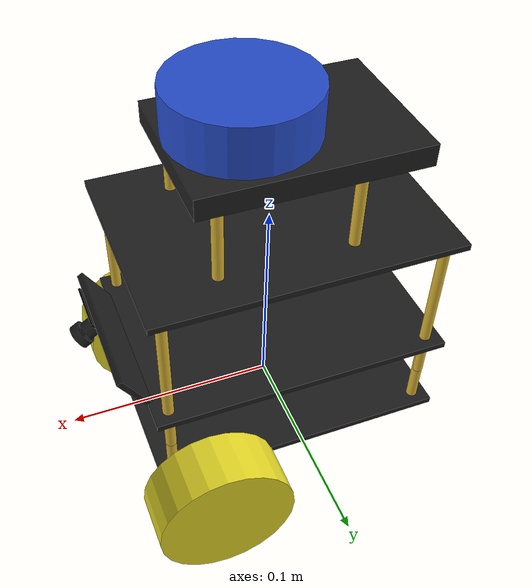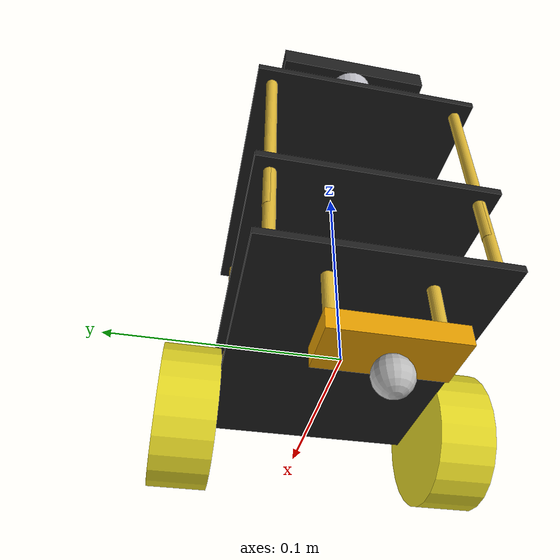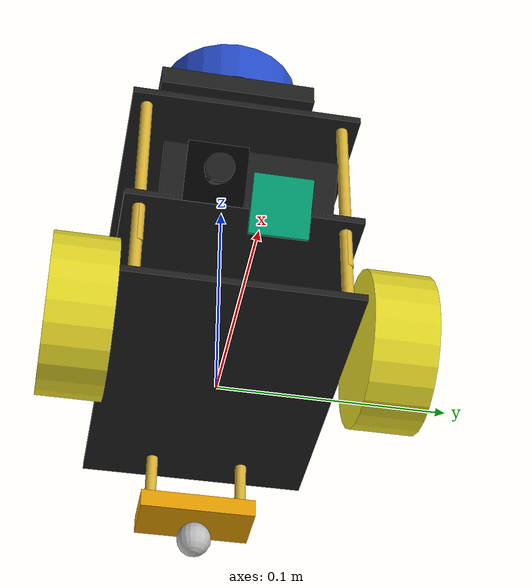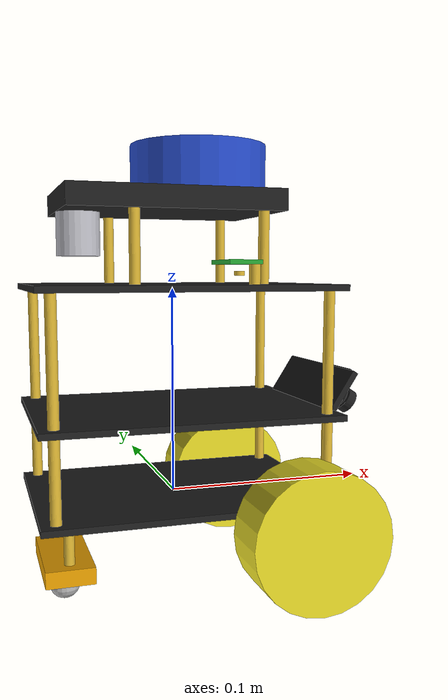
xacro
<?xml version="1.0"?>
<robot xmlns:xacro="http://www.ros.org/wiki/xacro" name="jetbot">

    <xacro:include filename="$(find jetbot_sim)/xacro/standoff.xacro"/>
    <xacro:include filename="$(find jetbot_sim)/xacro/wheel.xacro"/>
    <xacro:include filename="$(find jetbot_sim)/xacro/base-plate.xacro"/>
    <xacro:include filename="$(find jetbot_sim)/xacro/ydlidar.xacro"/>
    <xacro:include filename="$(find jetb3ot_sim)/xacro/camera.xacro"/>
    <xacro:include filename="$(find jetbot_sim)/xacro/imu.xacro"/>
    <xacro:include filename="$(find jetbot_sim)/xacro/reflectance-sensor.xacro"/>

    <!-- odom, so base_link can have inertia -->
    <link name="odom"/>

    <!-- robot base -->
    <xacro:base-plate
        name = "base"
        parent = "odom"
        joint_origin_xyz = "0 0 0"
    />

    <xacro:standoff
        name ="standoff1"
        radius = "0.0025"
        length = "0.0393"
        mass = "0.008"
        parent = "base_link"
        joint_origin_xyz = "-0.06277 0.042975 0.01975"
    />

    <xacro:standoff
        name ="standoff2"
        radius = "0.0025"
        length = "0.0393"
        mass = "0.008"
        parent = "base_link"
        joint_origin_xyz = "0.06277 0.042975 0.01975"
    />

    <xacro:standoff
        name ="standoff3"
        radius = "0.0025"
        length = "0.0393"
        mass = "0.008"
        parent = "base_link"
        joint_origin_xyz = "0.06277 -0.042975 0.01975"
    />

    <xacro:standoff
        name ="standoff4"
        radius = "0.0025"
        length = "0.0393"
        mass = "0.008"
        parent = "base_link"
        joint_origin_xyz = "-0.06277 -0.042975 0.01975"
    />

    <!-- level 2 -->
    <xacro:base-plate
        name = "level2"
        parent = "standoff2"
        joint_origin_xyz = "-0.06277 -0.04275 0.02125"
    />

    <xacro:standoff
        name ="standoff5"
        radius = "0.0025"
        length = "0.081"
        mass = "0.016"
        parent = "level2_link"
        joint_origin_xyz = "-0.06277 0.042975 0.01975"
    />

    <xacro:standoff
        name ="standoff6"
        radius = "0.0025"
        length = "0.081"
        mass = "0.016"
        parent = "level2_link"
        joint_origin_xyz = "0.06277 0.042975 0.01975"
    />

    <xacro:standoff
        name ="standoff7"
        radius = "0.0025"
        length = "0.081"
        mass = "0.016"
        parent = "level2_link"
        joint_origin_xyz = "0.06277 -0.042975 0.01975"
    />

    <xacro:standoff
        name ="standoff8"
        radius = "0.0025"
        length = "0.081"
        mass = "0.016"
        parent = "level2_link"
        joint_origin_xyz = "-0.06277 -0.042975 0.01975"
    />

    <!-- level 3 -->
    <xacro:base-plate
        name = "level3"
        parent = "standoff6"
        joint_origin_xyz = "-0.06277 -0.04275 0.04"
    />

    <xacro:wheel
        name = "left_wheel"
        parent = "base_link"
        joint_origin_xyz = "0.047135 0.0625 -0.008125"
    />

    <xacro:wheel
        name = "right_wheel"
        parent = "base_link"
        joint_origin_xyz = "0.047135 -0.0625 -0.008125"
    />

    <xacro:standoff
        name = "standoff9"
        radius = "0.0025"
        length = "0.023"
        mass = "0.004"
        parent = "base_link"
        joint_origin_xyz = "-0.05477 0.02 -0.01375"
    />

    <xacro:standoff
        name = "standoff10"
        radius = "0.0025"
        length = "0.023"
        mass = "0.004"
        parent = "base_link"
        joint_origin_xyz = "-0.05477 -0.02 -0.01375"
    />

    <link name="caster_plate_link">
        <visual>
          <geometry>
            <box size="0.023 0.05 0.008"/>
          </geometry>
        </visual>
        <collision>
          <geometry>
            <box size="0.023 0.01 0.008"/>
          </geometry>
        </collision>
        <inertial>
          <mass value="0.003"/>
          <origin rpy="0 0 0" xyz="0 0 0"/>
          <inertia ixx="0.0008333333333333335" ixy="0" ixz="0" iyy="0.0008333333333333335" iyz="0" izz="0.0008333333333333335"/>
        </inertial>
    </link>

    <joint name="caster_plate_joint" type="fixed">
        <origin rpy="0 0 0" xyz="0 0.02 -0.0165" />
        <parent link="standoff10" />
        <child link="caster_plate_link" />
    </joint>

    <link name="caster_ball_link">
        <visual>
          <origin xyz="0 0 0" rpy="0 0 0"/>
          <geometry>
            <sphere radius="0.0075"/>
          </geometry>
          <material name="silver">
            <color rgba="0.75 0.75 0.75 1.0"/>
          </material>
        </visual>
        <collision>
          <origin xyz="0 0 0" rpy="0 0 0"/>
          <geometry>
            <sphere radius="0.0075"/>
          </geometry>
        </collision>
        <inertial>
          <mass value="0.015"/>
          <origin xyz="0 0 0" rpy="0 0 0"/>
          <inertia ixx="0.00001" ixy="0.0" ixz="0.0" iyy="0.00001" iyz="0.0" izz="0.00001"/>
        </inertial>
    </link>

    <joint name="caster_ball_roll_joint" type="continuous">
        <parent link="caster_plate_link"/>
        <child link="caster_ball_link"/>
        <origin rpy="0 0 0" xyz="0 0 -0.0115"/>
        <axis xyz="1 0 0" />
    </joint>

    <link name="caster_ball_pitch_link" />

    <joint name="caster_ball_pitch_joint" type="continuous">
        <parent link="caster_ball_link"/>
        <child link="caster_ball_pitch_link"/>
        <origin xyz="0 0 0" rpy="0 0 0"/>
        <axis xyz="0 1 0"/>
    </joint>

    <link name="caster_ball_yaw_link" />

    <joint name="caster_ball_yaw_joint" type="continuous">
        <parent link="caster_ball_pitch_link"/>
        <child link="caster_ball_yaw_link"/>
        <origin xyz="0 0 0" rpy="0 0 0"/>
        <axis xyz="0 0 1"/>
    </joint>

    <xacro:standoff
        name = "standoff11"
        radius = "0.0025"
        length = "0.033"
        mass = "0.006"
        parent = "level3_link"
        joint_origin_xyz = "-0.025 -0.0315 0.018"
    />

    <xacro:standoff
        name = "standoff12"
        radius = "0.0025"
        length = "0.033"
        mass = "0.006"
        parent = "level3_link"
        joint_origin_xyz = "-0.025 0.0315 0.018"
    />

    <xacro:standoff
        name = "standoff13"
        radius = "0.0025"
        length = "0.033"
        mass = "0.006"
        parent = "level3_link"
        joint_origin_xyz = "0.035 -0.0315 0.018"
    />

    <xacro:standoff
        name = "standoff14"
        radius = "0.0025"
        length = "0.033"
        mass = "0.006"
        parent = "level3_link"
        joint_origin_xyz = "0.035 0.0315 0.018"
    />

    <xacro:ydlidar
        name = "primary"
        parent = "standoff14"
        joint_origin_xyz = "-0.04 -0.032 0.0215"
    />

    <link name="camera_plate_link">
        <visual>
          <geometry>
            <box size="0.022 0.072 0.003"/>
          </geometry>
        </visual>
        <collision>
          <geometry>
            <box size="0.022 0.072 0.003"/>
          </geometry>
        </collision>
        <inertial>
          <mass value="0.008"/>
          <origin rpy="0 0 0" xyz="0 0 0"/>
          <inertia ixx="0.0008333333333333335" ixy="0" ixz="0" iyy="0.0008333333333333335" iyz="0" izz="0.0008333333333333335"/>
        </inertial>
    </link>

    <joint name="camera_plate_joint" type="fixed">
        <origin rpy="0 -1 0" xyz="0.075 0 0.01" />
        <parent link="level2_link" />
        <child link="camera_plate_link" />
      </joint>

      <gazebo reference="camera_plate_link">
        <material>Gazebo/Black</material>
      </gazebo>

    <xacro:camera
        name = "front_camera"
        parent = "camera_plate_link"
        joint_origin_xyz = "0 -0.014 -0.002"
        joint_origin_rpy = "0 0 0"
    />

    <xacro:standoff
            name ="standoff15"
            radius = "0.0025"
            length = "0.01"
            mass = "0.002"
            parent = "level3_link"
            joint_origin_xyz = "0.0275 -0.04 0.0065"
        />

        <xacro:standoff
            name ="standoff16"
            radius = "0.0025"
            length = "0.002"
            mass = "0.5"
            parent = "level3_link"
            joint_origin_xyz = "0.0275 -0.02 0.0065"
        />

    <xacro:imu
        name = "default"
        parent = "standoff15"
        joint_origin_xyz = "-0.005 0.01 0.005"
        joint_origin_rpy = "0 0 1.5708"
    />

    <xacro:reflectance-sensor
        name = "front"
        parent = "camera_plate_link"
        joint_origin_xyz = "-0.01 0.014 -0.002"
    />

<!-- PLUGINS -->
<!-- JOINT PUBLISHER -->
<gazebo>
  <plugin name="jetbot_joint_state" filename="libgazebo_ros_joint_state_publisher.so">
    <update_rate>30</update_rate>
    <joint_name>left_wheel_joint</joint_name>
    <joint_name>right_wheel_joint</joint_name>
    <joint_name>caster_ball_yaw_joint</joint_name>
    <joint_name>caster_ball_roll_joint</joint_name>
    <joint_name>caster_ball_pitch_joint</joint_name>
  </plugin>
</gazebo>

<!-- Differential drive -->
<gazebo>
  <plugin filename="libgazebo_ros_diff_drive.so" name="differential_drive_controller">
    <!-- wheels -->
    <left_joint>left_wheel_joint</left_joint>
    <right_joint>right_wheel_joint</right_joint>
    <!-- kinematics -->
    <wheel_separation>0.13</wheel_separation>
    <wheel_diameter>0.065</wheel_diameter>
    <!-- limits -->
    <max_wheel_torque>1.0</max_wheel_torque>
    <max_wheel_acceleration>2.0</max_wheel_acceleration>
    <!-- output -->
    <publish_odom>true</publish_odom>
    <publish_odom_tf>true</publish_odom_tf>
    <odometry_frame>odom</odometry_frame>
    <robot_base_frame>base_link</robot_base_frame>
    <!-- cmd_vel topic -->
    <command_topic>/cmd_vel</command_topic>
  </plugin>
</gazebo>

<!-- Position Config -->
<ros2_control name="GazeboSystem" type="system">
  <hardware>
    <plugin>gazebo_ros2_control/GazeboSystem</plugin>
  </hardware>
  <joint name="default_ydlidar_top_joint">
    <command_interface name="position">
      <param name="min">-0.05</param>
      <param name="max">0.0</param>
    </command_interface>
    <state_interface name="position"/>
    <state_interface name="velocity"/>
    <state_interface name="effort"/>
  </joint>
</ros2_control>

<gazebo>
  <plugin filename="libgazebo_ros2_control.so" name="gazebo_ros2_control">
    <parameters>$(find jetbot_sim)/config/controller_position_velocity.yaml</parameters>
    <robot_param_node>robot_state_publisher</robot_param_node>
  </plugin>
</gazebo>
</robot>

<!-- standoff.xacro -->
<robot xmlns:xacro="http://www.ros.org/wiki/xacro" name="standoff">
    <xacro:macro name="standoff" params="name radius length mass parent joint_origin_xyz">
       <link name="${name}">
        <visual>
          <origin rpy="0 0 0" xyz="0 0 0" />
          <geometry>
            <cylinder radius="${radius}" length="${length}" />
          </geometry>
        </visual>
        <collision>
          <origin rpy="0 0 0" xyz="0 0 0"/>
          <geometry>
            <cylinder radius="${radius}" length="${length}" />
          </geometry>
        </collision>
        <inertial>
          <mass value="${mass}"/>
          <origin rpy="0 0 0" xyz="0 0 0"/>
          <inertia ixx="2e-05" ixy="0.0" ixz="0.0" iyy="2e-05" iyz="0.0" izz="2e-05"/>
        </inertial>
      </link>

      <joint name="${name}_standoff" type="fixed">
        <origin rpy="0 0 0" xyz="${joint_origin_xyz}" />
        <parent link="${parent}" />
        <child link="${name}" />
      </joint>

      <gazebo reference="${name}">
        <material>Gazebo/Gold</material>
      </gazebo>
    </xacro:macro>
</robot>

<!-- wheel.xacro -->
<robot xmlns:xacro="http://www.ros.org/wiki/xacro" name="wheel">
    <xacro:macro name="wheel" params="name parent joint_origin_xyz">
        <link name="${name}_link">
            <inertial>
                <origin rpy="0 1.5707 1.5707" xyz="0 0 0"/>
                <mass value="0.065"/>
                <inertia ixx="0.001" ixy="0.0" ixz="0.0" iyy="0.001" iyz="0.0" izz="0.001"/>
            </inertial>
            <visual>
                <origin rpy="0 1.5707 1.5707" xyz="0 0 0"/>
                <geometry>
                    <cylinder length="0.026" radius="0.0325"/>
                </geometry>
            </visual>
            <collision>
                <origin rpy="0 1.5707 1.5707" xyz="0 0 0"/>
                <geometry>
                    <cylinder length="0.026" radius="0.0325"/>
                </geometry>
            </collision>
        </link>

        <gazebo reference="${name}_link">
            <kp>1000000000000000000000000000.0</kp>
            <kd>1000000000000000000000000000.0</kd>
            <mu1>10.0</mu1>
            <mu2>10.0</mu2>
            <material>Gazebo/Yellow</material>
        </gazebo>

        <joint name="${name}_joint" type="continuous">
            <origin rpy="0 0 0" xyz="${joint_origin_xyz}"/>
            <parent link="${parent}"/>
            <child link="${name}_link"/>
            <axis rpy="0 0 0" xyz="0 1 0"/>
            <limit effort="10000" velocity="1000"/>
            <joint_properties damping="1.0" friction="1.0"/>
        </joint>
    </xacro:macro>
</robot>

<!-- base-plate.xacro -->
<robot xmlns:xacro="http://www.ros.org/wiki/xacro" name="base-plate">
    <xacro:macro name="base-plate" params="name parent joint_origin_xyz">
        <link name="${name}_link">
        <visual>
          <geometry>
            <box size="0.13954 0.0995 0.003"/>
          </geometry>
        </visual>
        <collision>
          <geometry>
            <box size="0.13954 0.0995 0.003"/>
          </geometry>
        </collision>
        <inertial>
          <mass value="0.035"/>
          <origin rpy="0 0 0" xyz="0 0 0"/>
          <inertia ixx="0.0008333333333333335" ixy="0" ixz="0" iyy="0.0008333333333333335" iyz="0" izz="0.0008333333333333335"/>
        </inertial>
      </link>

      <joint name="${name}_link_base" type="fixed">
        <origin rpy="0 0 0" xyz="${joint_origin_xyz}" />
        <parent link="${parent}" />
        <child link="${name}_link" />
      </joint>

      <gazebo reference="${name}_link">
        <material>Gazebo/Black</material>
      </gazebo>
    </xacro:macro>
</robot>

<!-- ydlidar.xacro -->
<robot xmlns:xacro="http://www.ros.org/wiki/xacro" name="ydlidar">
    <xacro:macro name="ydlidar" params="name parent joint_origin_xyz">
      <link name="${name}_ydlidar_box_link">
        <visual>
          <geometry>
            <box size="0.1 0.071 0.01"/>
          </geometry>
        </visual>
        <collision>
          <geometry>
            <box size="0.1 0.071 0.01"/>
          </geometry>
        </collision>
        <inertial>
          <mass value="0.023"/>
          <origin rpy="0 0 0" xyz="0 0 0"/>
          <inertia ixx="0.0008333333333333335" ixy="0" ixz="0" iyy="0.0008333333333333335" iyz="0" izz="0.0008333333333333335"/>
        </inertial>
      </link>

      <joint name="${name}_ydlidar_box_joint" type="fixed">
        <origin rpy="0 0 0" xyz="${joint_origin_xyz}" />
        <parent link="${parent}" />
        <child link="${name}_ydlidar_box_link" />
      </joint>

      <gazebo reference="${name}_ydlidar_box_link">
        <material>Gazebo/Black</material>
      </gazebo>

      <link name="${name}_ydlidar_top_link">
        <inertial>
          <mass value="0.023"/>
          <inertia ixx="0.001" ixy="0.0" ixz="0.0" iyy="0.001" iyz="0.0" izz="0.001"/>
        </inertial>
        <visual>
          <geometry>
            <cylinder length="0.022" radius="0.0325"/>
          </geometry>
        </visual>
        <collision>
          <geometry>
            <cylinder length="0.022" radius="0.0325"/>
          </geometry>
        </collision>
      </link>

      <joint name="${name}_ydlidar_top_joint" type="fixed">
        <origin rpy="0 0 0" xyz="0.018 0 0.016" />
        <parent link="${name}_ydlidar_box_link" />
        <child link="${name}_ydlidar_top_link" />
      </joint>

      <gazebo reference="${name}_ydlidar_top_link">
        <material>Gazebo/Blue</material>
      </gazebo>

      <link name="${name}_ydlidar_motor_link">
        <inertial>
          <mass value="0.024"/>
          <inertia ixx="0.001" ixy="0.0" ixz="0.0" iyy="0.001" iyz="0.0" izz="0.001"/>
        </inertial>
        <visual>
          <geometry>
            <cylinder length="0.02025" radius="0.010125"/>
          </geometry>
        </visual>
        <collision>
          <geometry>
            <cylinder length="0.02025" radius="0.010125"/>
          </geometry>
        </collision>
      </link>

      <joint name="${name}_ydlidar_motor_joint" type="fixed">
        <origin rpy="0 0 0" xyz="-0.04 0 -0.015" />
        <parent link="${name}_ydlidar_box_link" />
        <child link="${name}_ydlidar_motor_link" />
      </joint>

      <gazebo reference="${name}_ydlidar_motor_link">
        <material>Gazebo/Silver</material>
      </gazebo>
    </xacro:macro>
</robot>

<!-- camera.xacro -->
<robot xmlns:xacro="http://www.ros.org/wiki/xacro" name="camera">
    <xacro:macro name="camera" params="name parent joint_origin_xyz joint_origin_rpy">
        <link name="${name}_camera_board_link">
            <visual>
                <origin xyz="0 0 0" rpy="0 0 0"/>
                <geometry>
                    <box size="0.025 0.025 0.001"/>
                </geometry>
                <material name="black">
                    <color rgba="0 0 0 1"/>
                </material>
            </visual>
            <collision>
                <origin xyz="0 0 0" rpy="0 0 0"/>
                <geometry>
                    <box size="0.025 0.025 0.001"/>
                </geometry>
            </collision>
            <inertial>
                <mass value="0.001"/>
                <origin xyz="0 0 0" rpy="0 0 0"/>
                <inertia ixx="0.00001" ixy="0.0" ixz="0.0" iyy="0.00001" iyz="0.0" izz="0.00001"/>
            </inertial>
        </link>

        <joint name="${name}_camera_board_joint" type="fixed">
            <parent link="${parent}"/>
            <child link="${name}_camera_board_link"/>
            <origin rpy="${joint_origin_rpy}" xyz="${joint_origin_xyz}"/>
        </joint>

        <gazebo reference="${name}_camera_board_link">
            <material>Gazebo/Gold</material>
        </gazebo>

        <link name="${name}_camera_bottom_link">
            <inertial>
                <mass value="0.003"/>
                <inertia ixx="0.001" ixy="0.0" ixz="0.0" iyy="0.001" iyz="0.0" izz="0.001"/>
            </inertial>
            <visual>
                <geometry>
                    <cylinder length="0.01" radius="0.0045"/>
                </geometry>
            </visual>
            <collision>
                <geometry>
                    <cylinder length="0.01" radius="0.0045"/>
                </geometry>
            </collision>
        </link>

        <joint name="${name}_camera_bottom_joint" type="fixed">
            <origin rpy="0 0 0" xyz="0 0 -0.005"/>
            <parent link="${name}_camera_board_link"/>
            <child link="${name}_camera_bottom_link"/>
        </joint>

        <gazebo reference="${name}_camera_bottom_link">
            <material>Gazebo/Black</material>
        </gazebo>

        <link name="${name}_camera_top_link">
            <inertial>
                <mass value="0.003"/>
                <inertia ixx="0.001" ixy="0.0" ixz="0.0" iyy="0.001" iyz="0.0" izz="0.001"/>
            </inertial>
            <visual>
                <geometry>
                    <cylinder length="0.0045" radius="0.006"/>
                </geometry>
            </visual>
            <collision>
                <geometry>
                    <cylinder length="0.0045" radius="0.006"/>
                </geometry>
            </collision>
        </link>

        <joint name="${name}_camera_top_joint" type="fixed">
            <origin rpy="0 0 0" xyz="0 0 -0.0075"/>
            <parent link="${name}_camera_bottom_link"/>
            <child link="${name}_camera_top_link"/>
        </joint>

        <gazebo reference="${name}_camera_top_link">
            <material>Gazebo/Black</material>
        </gazebo>

        <gazebo>
            <plugin name="camera_controller" filename="libgazebo_ros_camera.so">
                <alwaysOn>true</alwaysOn>
                <updateRate>30.0</updateRate>
                <cameraName>camera</cameraName>
                <imageTopicName>/camera/image_raw</imageTopicName>
                <cameraInfoTopicName>/camera/camera_info</cameraInfoTopicName>
                <frameName>camera_link</frameName>
                <hackBaseline>0.07</hackBaseline>
                <distortionK1>0.0</distortionK1>
                <distortionK2>0.0</distortionK2>
                <distortionK3>0.0</distortionK3>
                <distortionT1>0.0</distortionT1>
                <distortionT2>0.0</distortionT2>
                <CxPrime>319.5</CxPrime>
                <CyPrime>239.5</CyPrime>
                <focal_length>554.256</focal_length>
                <Cx>319.5</Cx>
                <Cy>239.5</Cy>
                <imageWidth>640</imageWidth>
                <imageHeight>480</imageHeight>
                <nearClip>0.1</nearClip>
                <farClip>100.0</farClip>
                <noise>
                    <type>gaussian</type>
                    <mean>0.0</mean>
                    <stddev>0.007</stddev>
                </noise>
            </plugin>
        </gazebo>
    </xacro:macro>
</robot>

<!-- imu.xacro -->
<robot xmlns:xacro="http://www.ros.org/wiki/xacro" name="imu">
    <xacro:macro name="imu" params="name parent joint_origin_xyz joint_origin_rpy">

       <!-- Define the IMU link -->
        <link name="${name}_imu_link">
            <visual>
                <origin xyz="0 0 0" rpy="0 0 0"/>
                <geometry>
                    <box size="0.026 0.0155 0.002"/>
                </geometry>
            </visual>
            <collision>
                <origin xyz="0 0 0" rpy="0 0 0"/>
                <geometry>
                    <box size="0.026 0.0155 0.002"/>
                </geometry>
            </collision>
            <inertial>
                <mass value="0.002"/>
                <origin xyz="0 0 0" rpy="0 0 0"/>
                <inertia ixx="0.00001" ixy="0.0" ixz="0.0" iyy="0.00001" iyz="0.0" izz="0.00001"/>
            </inertial>
        </link>

        <!-- Joint to attach the IMU to the robot -->
        <joint name="${name}_imu_joint" type="fixed">
            <parent link="${parent}"/>
            <child link="${name}_imu_link"/>
            <origin rpy="${joint_origin_rpy}" xyz="${joint_origin_xyz}" />
        </joint>

        <!-- Sensor plugin for Gazebo simulation -->
        <gazebo reference="${name}_imu_link">
            <material>Gazebo/Green</material>
            <plugin name="imu_sensor_controller" filename="libgazebo_ros_imu.so">
                <alwaysOn>true</alwaysOn>
                <updateRate>100.0</updateRate>
                <bodyName>imu_link</bodyName>
                <topicName>/imu/data</topicName>
                <gaussianNoise>0.01</gaussianNoise>
                <xyzOffset>0 0 0</xyzOffset>
                <rpyOffset>0 0 0</rpyOffset>
            </plugin>
        </gazebo>
    </xacro:macro>
</robot>

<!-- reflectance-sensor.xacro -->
<robot xmlns:xacro="http://www.ros.org/wiki/xacro" name="reflectance-sensor">
    <xacro:macro name="reflectance-sensor" params="name parent joint_origin_xyz">
        <link name="${name}_reflectance_sensor_link">
            <visual>
                <origin xyz="0 0 0" rpy="0 0 0"/>
                <geometry>
                    <box size="0.025 0.025 0.003"/>
                </geometry>
            </visual>
            <collision>
                <origin xyz="0 0 0" rpy="0 0 0"/>
                <geometry>
                    <box size="0.025 0.025 0.003"/>
                </geometry>
            </collision>
            <inertial>
                <mass value="0.002"/>
                <origin xyz="0 0 0" rpy="0 0 0"/>
                <inertia ixx="0.00001" ixy="0.0" ixz="0.0" iyy="0.00001" iyz="0.0" izz="0.00001"/>
            </inertial>
        </link>
        <joint name="${name}_reflectance_sensor_joint" type="fixed">
            <parent link="${parent}"/>
            <child link="${name}_reflectance_sensor_link"/>
            <origin rpy="0 0 0" xyz="${joint_origin_xyz}"/>
        </joint>
        <gazebo>
            <material>Gazebo/Red</material>
            <sensor type="ray" name="reflectance_range_finder">
                <always_on>true</always_on>
                <visualize>true</visualize>
                <update_rate>30</update_rate>
                <pose>0 0 0.05 0 0 0</pose>
                <ray>
                    <scan>
                        <horizontal>
                            <samples>1</samples>
                            <resolution>1</resolution>
                            <min_angle>0</min_angle>
                            <max_angle>0</max_angle>
                        </horizontal>
                    </scan>
                    <range>
                        <min>0.1</min>
                        <max>10.0</max>
                        <resolution>0.01</resolution>
                    </range>
                </ray>
                <plugin name="gazebo_ros_range" filename="libgazebo_ros_range.so">
                    <topic_name>/reflectance_range_finder</topic_name>
                    <frame_name>sensor_link</frame_name>
                    <radiation>infrared</radiation>
                    <fov>0.01</fov>
                    <gaussianNoise>0.01</gaussianNoise>
                </plugin>
            </sensor>
        </gazebo>
    </xacro:macro>
</robot>
